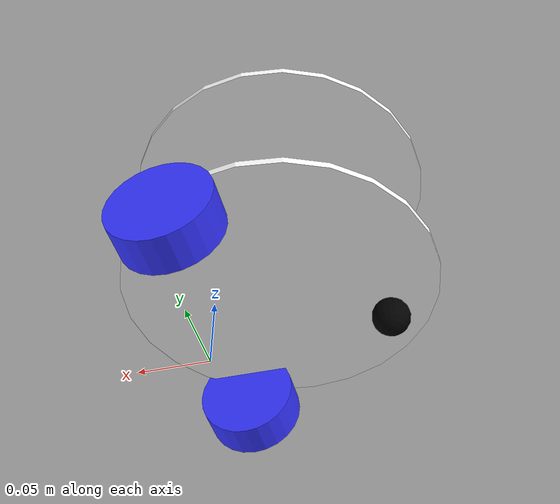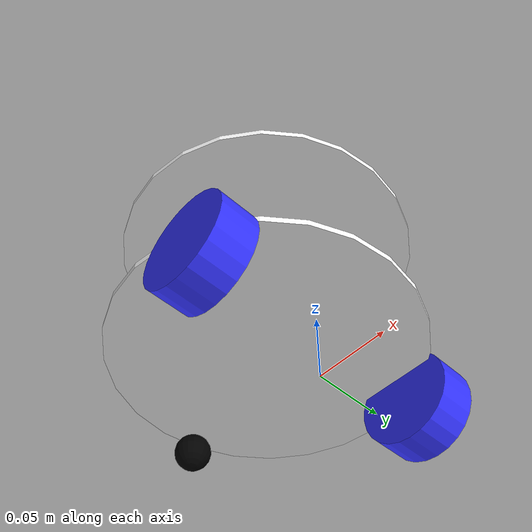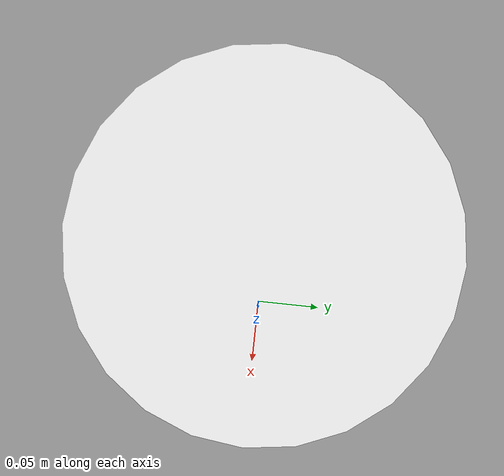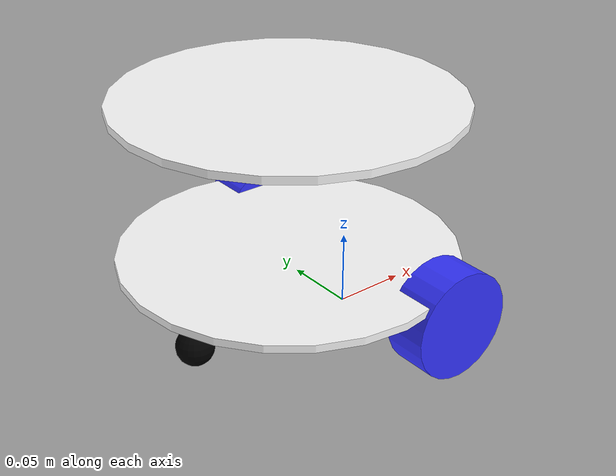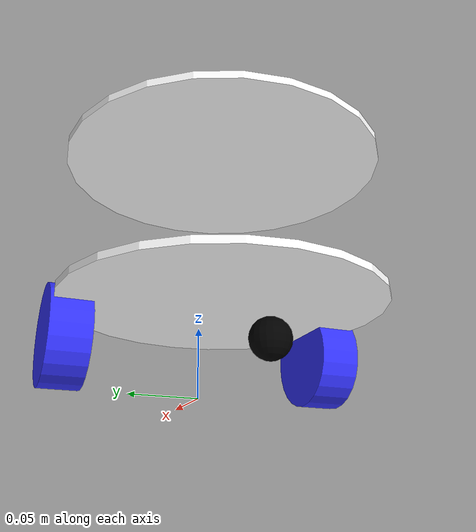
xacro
<?xml version="1.0"?>
<robot name="my_robot" xmlns:xacro="http://www.ros.org/wiki/xacro">
    <xacro:include filename="inertial_macros.xacro" />

    <!-- 颜色定义 -->
    <material name="white">
        <color rgba="1 1 1 1" />
    </material>

    <material name="orange">
        <color rgba="1 0.3 0.1 1" />
    </material>

    <material name="blue">
        <color rgba="0.2 0.2 1 1" />
    </material>

    <material name="black">
        <color rgba="0 0 0 1" />
    </material>

    <material name="red">
        <color rgba="1 0 0 1" />
    </material>

    <!-- 车身结构：双层 ⌀0.22 圆盘（2026-08 底盘重做）
         base_link = 第一层圆盘下表面所在平面，原点 = 两驱动轮轴心连线中点的投影。
         圆盘圆心不在 base_link 上，而在其后方 0.047（差速车轮轴中点 ≠ 盘心）。 -->
    <link name="base_link">
        <visual>
            <origin xyz="-0.047 0 0.0025" rpy="0 0 0" />
            <geometry>
                <cylinder radius="0.11" length="0.005" />
            </geometry>
            <material name="white" />
        </visual>
        <collision>
            <origin xyz="-0.047 0 0.0025" rpy="0 0 0" />
            <geometry>
                <cylinder radius="0.11" length="0.005" />
            </geometry>
        </collision>
        <!-- 质量为估计值（整车实测质量待补），不影响 TF/里程计，只影响仿真动力学 -->
        <xacro:inertial_cylinder mass="1.5" length="0.005" radius="0.11">
            <origin xyz="-0.047 0 0.0025" rpy="0 0 0" />
        </xacro:inertial_cylinder>
    </link>

    <!-- 第二层（顶板）：同规格 ⌀0.22 圆盘，由立柱撑开，顶面离地 0.16 -->
    <joint name="top_plate_joint" type="fixed">
        <parent link="base_link" />
        <child link="top_plate" />
        <origin xyz="-0.047 0 0.1055" rpy="0 0 0" />
    </joint>

    <link name="top_plate">
        <visual>
            <geometry>
                <cylinder radius="0.11" length="0.005" />
            </geometry>
            <material name="white" />
        </visual>
        <collision>
            <geometry>
                <cylinder radius="0.11" length="0.005" />
            </geometry>
        </collision>
        <!-- 质量为估计值，同上 -->
        <xacro:inertial_cylinder mass="0.3" length="0.005" radius="0.11">
            <origin xyz="0 0 0" rpy="0 0 0" />
        </xacro:inertial_cylinder>
    </link>

    <gazebo reference="top_plate">
        <material>Gazebo/White</material>
    </gazebo>

    <!-- BASE_FOOTPRINT -->

    <joint name="base_footprint_joint" type="fixed">
        <parent link="base_footprint" />
        <child link="base_link" />
        <!-- 第一层圆盘下表面离地 0.052（实测） -->
        <origin xyz="0 0 0.052" rpy="0 0 0" />
    </joint>

    <link name="base_footprint">
    </link>

    <!-- 左轮 -->
    <joint name="left_wheel_joint" type="continuous">
        <parent link="base_link" />
        <child link="left_wheel" />
        <!-- z 为负：轮轴心在 base_link（板下表面, 离地 0.052）下方 0.017，即离地 0.035 = 轮半径 -->
        <origin xyz="0.0 0.096 -0.017" rpy="-${pi/2} 0.0 0.0" />
        <axis xyz="0.0 0.0 1.0" />
    </joint>

    <link name="left_wheel">
        <visual>
            <geometry>
                <cylinder radius="0.035" length="0.028" />
            </geometry>
            <material name="blue" />
        </visual>
        <collision>
            <geometry>
                <cylinder radius="0.035" length="0.028" />
            </geometry>
        </collision>
        <xacro:inertial_cylinder mass="0.1" length="0.028" radius="0.035">
            <origin xyz="0 0 0" rpy="0 0 0" />
        </xacro:inertial_cylinder>
    </link>

    <gazebo reference="left_wheel">
        <mu1>1.0</mu1>
        <mu2>1.0</mu2>
        <kp>1000000.0</kp>
        <kd>100.0</kd>
        <minDepth>0.001</minDepth>
        <maxVel>0.1</maxVel>
        <fdir1>1 0 0</fdir1>
        <material>Gazebo/Blue</material>
    </gazebo>

    <!-- 右轮 -->
    <joint name="right_wheel_joint" type="continuous">
        <parent link="base_link" />
        <child link="right_wheel" />
        <!-- z 为负，同左轮 -->
        <origin xyz="0.0 -0.096 -0.017" rpy="${pi/2} 0.0 0.0" />
        <axis xyz="0.0 0.0 -1.0" />
    </joint>

    <link name="right_wheel">
        <visual>
            <geometry>
                <cylinder radius="0.035" length="0.028" />
            </geometry>
            <material name="blue" />
        </visual>
        <collision>
            <geometry>
                <cylinder radius="0.035" length="0.028" />
            </geometry>
        </collision>
        <xacro:inertial_cylinder mass="0.1" length="0.028" radius="0.035">
            <origin xyz="0 0 0" rpy="0 0 0" />
        </xacro:inertial_cylinder>
    </link>

    <gazebo reference="right_wheel">
        <mu1>1.0</mu1>
        <mu2>1.0</mu2>
        <kp>1000000.0</kp>
        <kd>100.0</kd>
        <minDepth>0.001</minDepth>
        <maxVel>0.1</maxVel>
        <fdir1>1 0 0</fdir1>
        <material>Gazebo/Blue</material>
    </gazebo>

    <!-- 后辅助轮 -->
    <joint name="caster_back_joint" type="fixed">
        <parent link="base_link" />
        <child link="caster_back_wheel" />
        <!-- WHEELTEC 万向轮 Ø25，球心在轮轴中点后方 0.12；z 为负，球心离地 0.0125 = 球半径 -->
        <origin xyz="-0.12 0 -0.0395" rpy="0 0 0" />
    </joint>

    <link name="caster_back_wheel">
        <visual>
            <geometry>
                <sphere radius="0.0125" />
            </geometry>
            <material name="black" />
        </visual>
        <collision>
            <geometry>
                <sphere radius="0.0125" />
            </geometry>
        </collision>
        <xacro:inertial_sphere mass="0.05" radius="0.0125">
            <origin xyz="0 0 0" rpy="0 0 0" />
        </xacro:inertial_sphere>
    </link>

    <gazebo reference="caster_back_wheel">
        <mu1>0.0001</mu1>
        <mu2>0.0001</mu2>
        <kp>1000000.0</kp>
        <kd>100.0</kd>
        <minDepth>0.001</minDepth>
        <maxVel>1.0</maxVel>
        <material>Gazebo/Black</material>
    </gazebo>

    <gazebo>
        <plugin filename="gz-sim-pose-publisher-system"
                name="gz::sim::systems::PosePublisher">
            <publish_model_pose>true</publish_model_pose>
            <publish_link_pose>false</publish_link_pose>
            <publish_collision_pose>false</publish_collision_pose>
            <publish_visual_pose>false</publish_visual_pose>
            <publish_nested_model_pose>false</publish_nested_model_pose>
            <use_pose_vector_msg>false</use_pose_vector_msg>
            <update_frequency>50</update_frequency>
        </plugin>
    </gazebo>

</robot>
